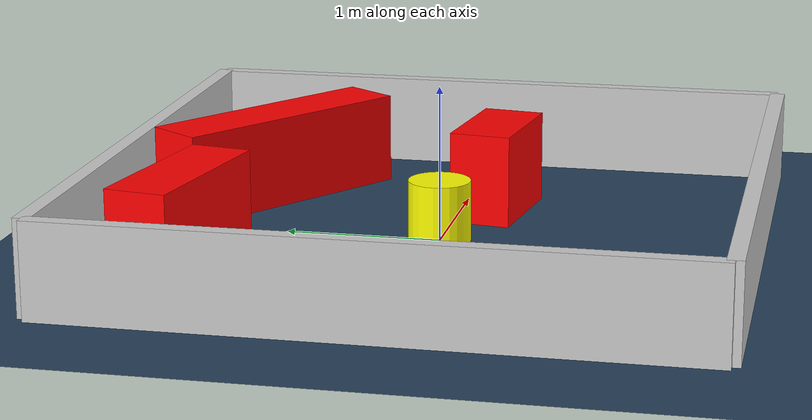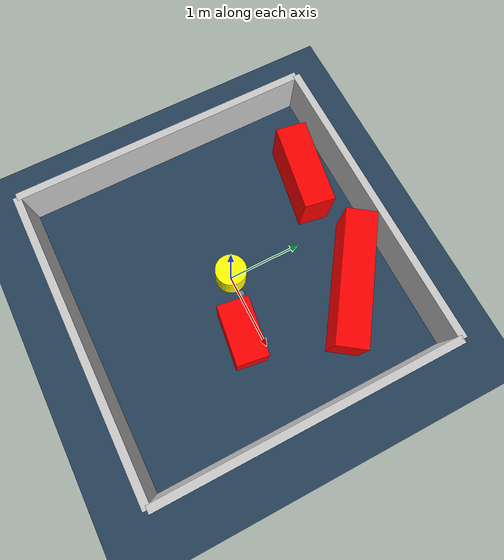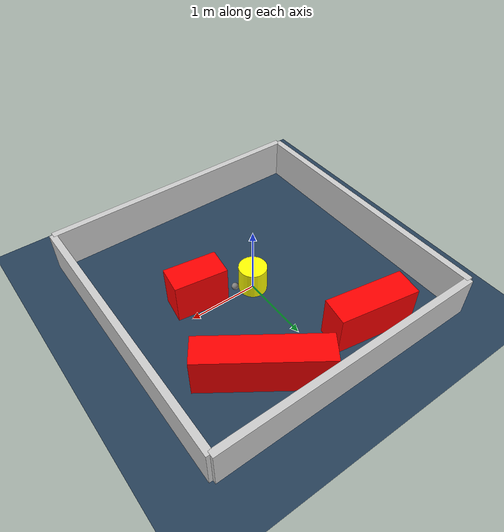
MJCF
<?xml version="1.0" ?>
<mujoco model="generated_environment">
  <option timestep="0.01" integrator="RK4" cone="elliptic"/>
  <default>
    <geom density="1"/>
  </default>
  <asset>
    <texture builtin="gradient" height="3072" rgb1="0.3 0.5 0.7" rgb2="0 0 0" type="skybox" width="512"/>
    <texture builtin="checker" height="300" mark="edge" markrgb="0.8 0.8 0.8" name="groundplane" rgb1="0.2 0.3 0.4" rgb2="0.1 0.2 0.3" type="2d" width="300"/>
    <material name="groundplane" reflectance="0.2" texrepeat="5 5" texture="groundplane" texuniform="true"/>
    <material name="robot" rgba="0.0 1.0 0.0 1"/>
  </asset>
  <worldbody>
    <light dir="0 0 -1" directional="true" pos="0 0 1.5"/>
    <geom condim="4" friction="1.0 0.005 0.001" material="groundplane" name="floor" size="0 0 0.05" type="plane"/>
    <body name="walls">
      <geom name="wall_1" condim="4" pos="-2.0 0.0 0.3" rgba="0.800000011920929 0.800000011920929 0.800000011920929 1.0" size="0.05 2.0 0.3" type="box"/>
      <geom name="wall_2" condim="4" pos="2.0 0.0 0.3" rgba="0.800000011920929 0.800000011920929 0.800000011920929 1.0" size="0.05 2.0 0.3" type="box"/>
      <geom name="wall_3" condim="4" pos="0.0 -2.0 0.3" rgba="0.800000011920929 0.800000011920929 0.800000011920929 1.0" size="2.0 0.05 0.3" type="box"/>
      <geom name="wall_4" condim="4" pos="0.0 2.0 0.3" rgba="0.800000011920929 0.800000011920929 0.800000011920929 1.0" size="2.0 0.05 0.3" type="box"/>
    </body>
    <body name="robot">
      <joint name="joint_x" type="slide" pos="0 0 0" axis="1 0 0"/>
      <joint name="joint_y" type="slide" pos="0 0 0" axis="0 1 0"/>
      <geom name="robot" type="sphere" pos="0.3 0.0 0.2" size="0.05" mass="5." friction="1.0 0.005 0.0001" condim="4" rgba="0.5 0.5 0.5 1.0"/>
      <site name="sensor_ball"/>
    </body>
    <body name="obstacle_movable_1">
      <geom name="obstacle_movable_1" condim="4" pos="0.0 0.0 0.2" euler="0 0 0.0" friction="1.0 0.005 0.001" rgba="1.0 1.0 0.0 1.0" size="0.2 0.2 0.0" type="cylinder" mass="0.1"/>
      <joint type="free"/>
    </body>
    <body name="obstacle_2_static">
      <geom name="obstacle_2_static" condim="4" pos="0.7651770071312141 -0.23256495164324442 0.3" euler="0 0 172.11043493833697" friction="1.0 0.005 0.001" rgba="1 0 0 1" size="0.3720642366305362 0.2 0.3" type="box"/>
    </body>
    <body name="obstacle_3_static">
      <geom name="obstacle_3_static" condim="4" pos="-0.7850169032645625 1.4612917570953659 0.3" euler="0 0 350.31326019493014" friction="1.0 0.005 0.001" rgba="1 0 0 1" size="0.5704446078137106 0.2 0.3" type="box"/>
    </body>
    <body name="obstacle_4_static">
      <geom name="obstacle_4_static" condim="4" pos="0.8019307710566093 1.2907263031842013 0.3" euler="0 0 145.21056914901925" friction="1.0 0.005 0.001" rgba="1 0 0 1" size="0.8644911779420319 0.2 0.3" type="box"/>
    </body>
  </worldbody>
  <actuator>
    <motor name="actuator_x" joint="joint_x" gear="1" ctrlrange="-1 1"/>
    <motor name="actuator_y" joint="joint_y" gear="1" ctrlrange="-1 1"/>
  </actuator>
</mujoco>
